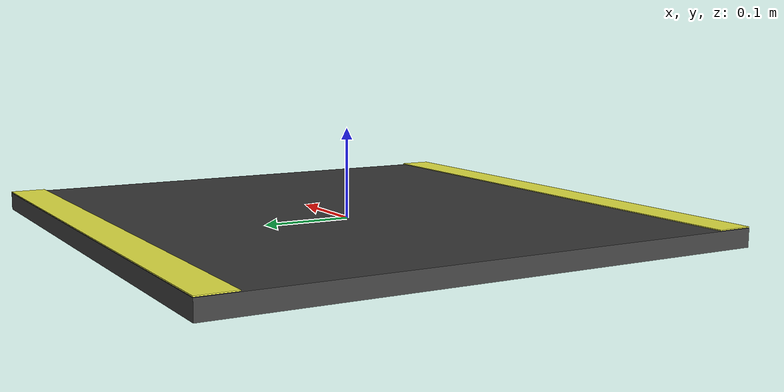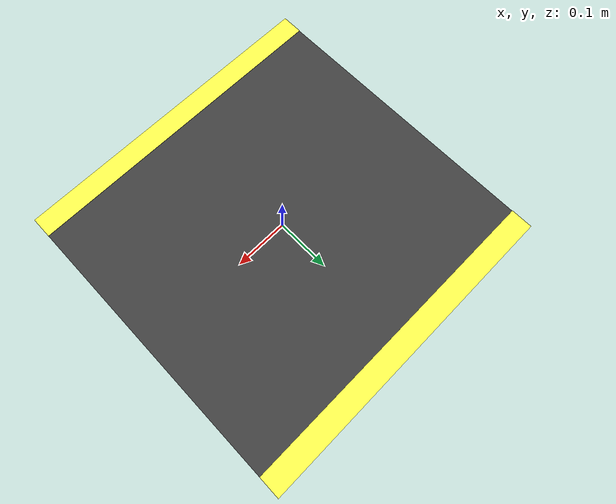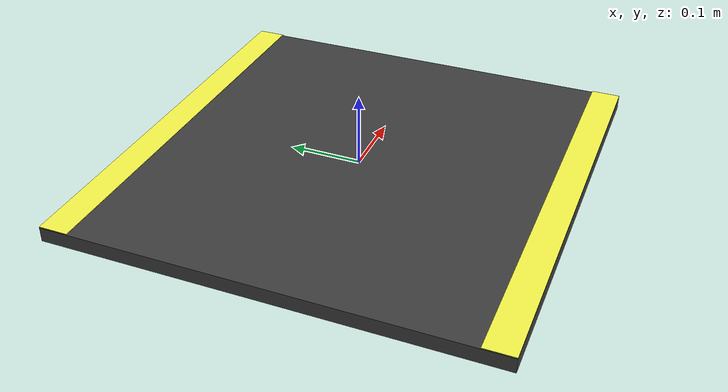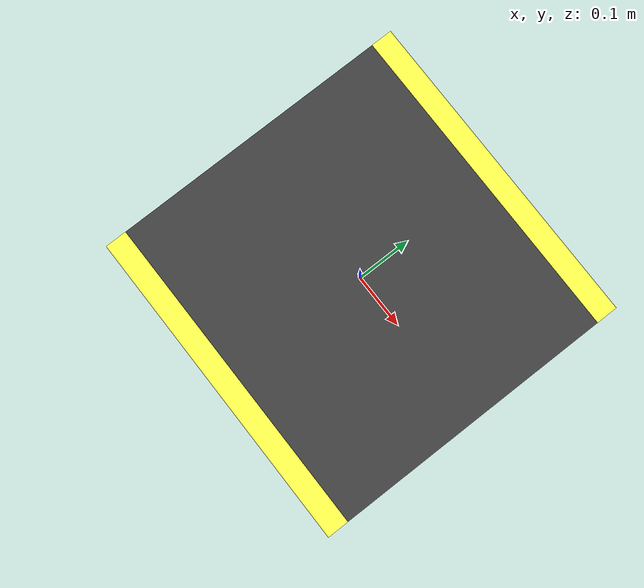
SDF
<?xml version="1.0" ?>
<sdf version="1.6">
  <!-- Thin ground pad (2 cm tall, 0.6 x 0.6 m) placed wherever the
       arm's pickup station will live. Non-colliding so the robot can
       roll onto it. -->
  <model name="scout_dock">
    <static>true</static>
    <link name="link">
      <visual name="pad">
        <geometry>
          <box><size>0.6 0.6 0.02</size></box>
        </geometry>
        <material>
          <ambient>0.15 0.15 0.15 1</ambient>
          <diffuse>0.25 0.25 0.25 1</diffuse>
        </material>
      </visual>
      <visual name="stripe_n">
        <pose>0 0.28 0.011 0 0 0</pose>
        <geometry>
          <box><size>0.6 0.04 0.001</size></box>
        </geometry>
        <material>
          <ambient>0.95 0.95 0.2 1</ambient>
          <diffuse>1.0 1.0 0.3 1</diffuse>
        </material>
      </visual>
      <visual name="stripe_s">
        <pose>0 -0.28 0.011 0 0 0</pose>
        <geometry>
          <box><size>0.6 0.04 0.001</size></box>
        </geometry>
        <material>
          <ambient>0.95 0.95 0.2 1</ambient>
          <diffuse>1.0 1.0 0.3 1</diffuse>
        </material>
      </visual>
    </link>
  </model>
</sdf>
